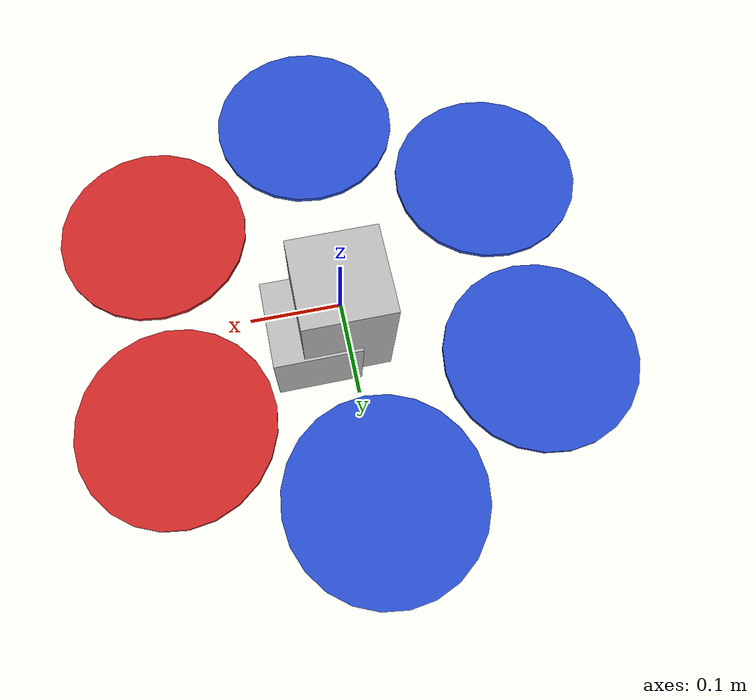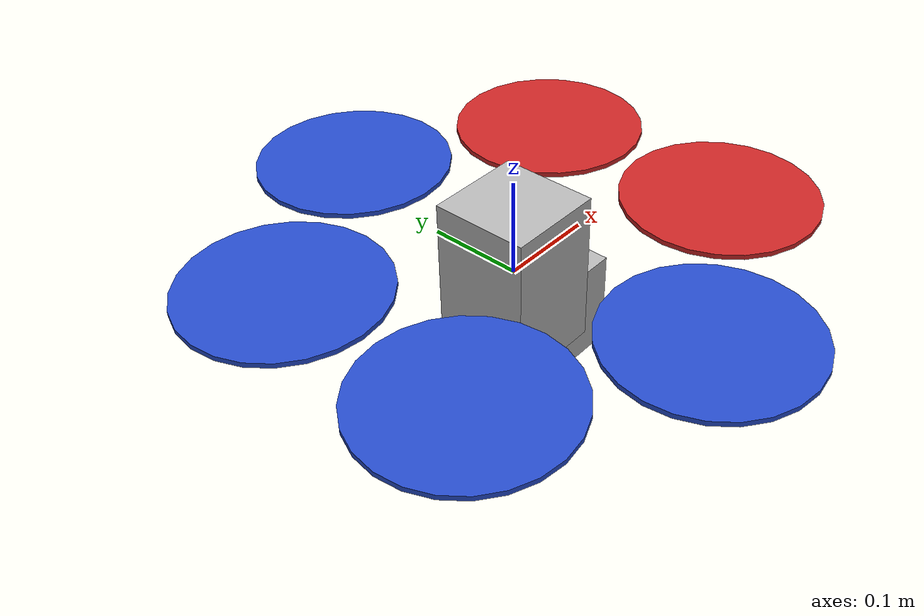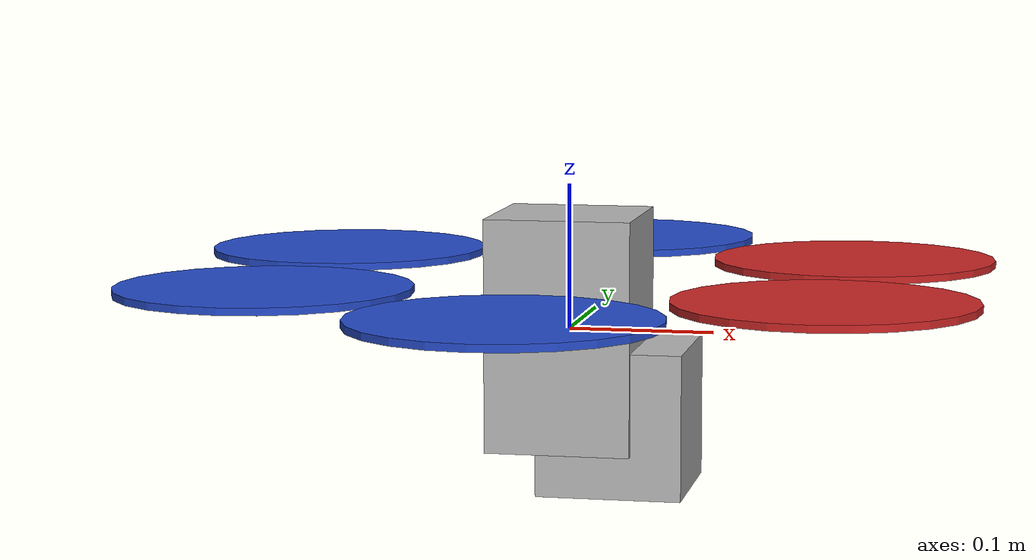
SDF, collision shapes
<?xml version='1.0'?>
<sdf version='1.7'>
  <model name='firefly_camera'>
    <link name='firefly/base_link'>
      <inertial>
        <pose>0 0 0 0 -0 0</pose>
        <mass>1.5</mass>
        <inertia>
          <ixx>0.0347563</ixx>
          <ixy>0</ixy>
          <ixz>0</ixz>
          <iyy>0.0458929</iyy>
          <iyz>0</iyz>
          <izz>0.0977</izz>
        </inertia>
      </inertial>
      <self_collide>0</self_collide>
      <enable_wind>0</enable_wind>
      <kinematic>0</kinematic>
      <pose>0 0 0 0 -0 0</pose>
      <visual name='firefly/base_link_inertia_visual'>
        <pose>0 0 0 0 -0 0</pose>
        <geometry>
          <mesh>
            <scale>1 1 1</scale>
            <uri>/root/drone_testing/src/rotors_simulator/rotors_description/meshes/firefly.dae</uri>
          </mesh>
        </geometry>
        <material>
          <shader type='pixel'/>
          <emissive>0 0 0 1</emissive>
        </material>
        <transparency>0</transparency>
        <cast_shadows>1</cast_shadows>
      </visual>
      <collision name='firefly/base_link_inertia_collision'>
        <laser_retro>0</laser_retro>
        <max_contacts>10</max_contacts>
        <pose>0 0 0 0 -0 0</pose>
        <geometry>
          <box>
            <size>0.1 0.1 0.16</size>
          </box>
        </geometry>
        <surface>
          <friction>
            <ode>
              <mu>1</mu>
              <mu2>1</mu2>
              <fdir1>0 0 0</fdir1>
              <slip1>0</slip1>
              <slip2>0</slip2>
            </ode>
            <torsional>
              <coefficient>1</coefficient>
              <patch_radius>0</patch_radius>
              <surface_radius>0</surface_radius>
              <use_patch_radius>1</use_patch_radius>
              <ode>
                <slip>0</slip>
              </ode>
            </torsional>
          </friction>
          <bounce>
            <restitution_coefficient>0</restitution_coefficient>
            <threshold>1e+06</threshold>
          </bounce>
          <contact>
            <collide_without_contact>0</collide_without_contact>
            <collide_without_contact_bitmask>1</collide_without_contact_bitmask>
            <collide_bitmask>1</collide_bitmask>
            <ode>
              <soft_cfm>0</soft_cfm>
              <soft_erp>0.2</soft_erp>
              <kp>1e+13</kp>
              <kd>1</kd>
              <max_vel>0.01</max_vel>
              <min_depth>0</min_depth>
            </ode>
            <bullet>
              <split_impulse>1</split_impulse>
              <split_impulse_penetration_threshold>-0.01</split_impulse_penetration_threshold>
              <soft_cfm>0</soft_cfm>
              <soft_erp>0.2</soft_erp>
              <kp>1e+13</kp>
              <kd>1</kd>
            </bullet>
          </contact>
        </surface>
      </collision>
    </link>
    <link name='firefly/imu_link'>
      <pose>0 0 0 0 -0 0</pose>
      <inertial>
        <pose>0 0 0 0 -0 0</pose>
        <mass>0.015</mass>
        <inertia>
          <ixx>1e-05</ixx>
          <ixy>0</ixy>
          <ixz>0</ixz>
          <iyy>1e-05</iyy>
          <iyz>0</iyz>
          <izz>1e-05</izz>
        </inertia>
      </inertial>
      <self_collide>0</self_collide>
      <enable_wind>0</enable_wind>
      <kinematic>0</kinematic>
    </link>
    <link name='firefly/imugt_link'>
      <pose>0 0 0 0 -0 0</pose>
      <inertial>
        <pose>0 0 0 0 -0 0</pose>
        <mass>1e-05</mass>
        <inertia>
          <ixx>1e-05</ixx>
          <ixy>0</ixy>
          <ixz>0</ixz>
          <iyy>1e-05</iyy>
          <iyz>0</iyz>
          <izz>1e-05</izz>
        </inertia>
      </inertial>
      <self_collide>0</self_collide>
      <enable_wind>0</enable_wind>
      <kinematic>0</kinematic>
    </link>
    <link name='firefly/odometry_sensor1_link'>
      <pose>0 0 0 0 -0 0</pose>
      <inertial>
        <pose>0 0 0 0 -0 0</pose>
        <mass>1e-05</mass>
        <inertia>
          <ixx>1e-05</ixx>
          <ixy>0</ixy>
          <ixz>0</ixz>
          <iyy>1e-05</iyy>
          <iyz>0</iyz>
          <izz>1e-05</izz>
        </inertia>
      </inertial>
      <self_collide>0</self_collide>
      <enable_wind>0</enable_wind>
      <kinematic>0</kinematic>
    </link>
    <link name='firefly/odometry_sensorgt_link'>
      <pose>0 0 0 0 -0 0</pose>
      <inertial>
        <pose>0 0 0 0 -0 0</pose>
        <mass>1e-05</mass>
        <inertia>
          <ixx>1e-05</ixx>
          <ixy>0</ixy>
          <ixz>0</ixz>
          <iyy>1e-05</iyy>
          <iyz>0</iyz>
          <izz>1e-05</izz>
        </inertia>
      </inertial>
      <self_collide>0</self_collide>
      <enable_wind>0</enable_wind>
      <kinematic>0</kinematic>
    </link>
    <link name='firefly/rotor_0'>
      <pose>0.186195 0.1075 0.037 0 -0 0</pose>
      <inertial>
        <pose>0 0 0 0 -0 0</pose>
        <mass>0.005</mass>
        <inertia>
          <ixx>9.75e-07</ixx>
          <ixy>0</ixy>
          <ixz>0</ixz>
          <iyy>4.17041e-05</iyy>
          <iyz>0</iyz>
          <izz>4.26041e-05</izz>
        </inertia>
      </inertial>
      <gravity>1</gravity>
      <velocity_decay/>
      <self_collide>0</self_collide>
      <enable_wind>0</enable_wind>
      <kinematic>0</kinematic>
      <visual name='firefly/rotor_0_visual'>
        <pose>0 0 0 0 -0 0</pose>
        <geometry>
          <mesh>
            <scale>0.1 0.1 0.1</scale>
            <uri>/root/drone_testing/src/rotors_simulator/rotors_description/meshes/propeller_ccw.dae</uri>
          </mesh>
        </geometry>
        <material>
          <script>
            <name>Gazebo/Red</name>
            <uri>file://media/materials/scripts/gazebo.material</uri>
          </script>
          <shader type='pixel'/>
          <emissive>0 0 0 1</emissive>
        </material>
        <transparency>0</transparency>
        <cast_shadows>1</cast_shadows>
      </visual>
      <collision name='firefly/rotor_0_collision'>
        <laser_retro>0</laser_retro>
        <max_contacts>10</max_contacts>
        <pose>0 0 0 0 -0 0</pose>
        <geometry>
          <cylinder>
            <radius>0.1</radius>
            <length>0.005</length>
          </cylinder>
        </geometry>
        <surface>
          <friction>
            <ode>
              <mu>1</mu>
              <mu2>1</mu2>
              <fdir1>0 0 0</fdir1>
              <slip1>0</slip1>
              <slip2>0</slip2>
            </ode>
            <torsional>
              <coefficient>1</coefficient>
              <patch_radius>0</patch_radius>
              <surface_radius>0</surface_radius>
              <use_patch_radius>1</use_patch_radius>
              <ode>
                <slip>0</slip>
              </ode>
            </torsional>
          </friction>
          <bounce>
            <restitution_coefficient>0</restitution_coefficient>
            <threshold>1e+06</threshold>
          </bounce>
          <contact>
            <collide_without_contact>0</collide_without_contact>
            <collide_without_contact_bitmask>1</collide_without_contact_bitmask>
            <collide_bitmask>1</collide_bitmask>
            <ode>
              <soft_cfm>0</soft_cfm>
              <soft_erp>0.2</soft_erp>
              <kp>1e+13</kp>
              <kd>1</kd>
              <max_vel>0.01</max_vel>
              <min_depth>0</min_depth>
            </ode>
            <bullet>
              <split_impulse>1</split_impulse>
              <split_impulse_penetration_threshold>-0.01</split_impulse_penetration_threshold>
              <soft_cfm>0</soft_cfm>
              <soft_erp>0.2</soft_erp>
              <kp>1e+13</kp>
              <kd>1</kd>
            </bullet>
          </contact>
        </surface>
      </collision>
    </link>
    <link name='firefly/rotor_1'>
      <pose>0 0.215 0.037 0 -0 0</pose>
      <inertial>
        <pose>0 0 0 0 -0 0</pose>
        <mass>0.005</mass>
        <inertia>
          <ixx>9.75e-07</ixx>
          <ixy>0</ixy>
          <ixz>0</ixz>
          <iyy>4.17041e-05</iyy>
          <iyz>0</iyz>
          <izz>4.26041e-05</izz>
        </inertia>
      </inertial>
      <gravity>1</gravity>
      <velocity_decay/>
      <self_collide>0</self_collide>
      <enable_wind>0</enable_wind>
      <kinematic>0</kinematic>
      <visual name='firefly/rotor_1_visual'>
        <pose>0 0 0 0 -0 0</pose>
        <geometry>
          <mesh>
            <scale>0.1 0.1 0.1</scale>
            <uri>/root/drone_testing/src/rotors_simulator/rotors_description/meshes/propeller_cw.dae</uri>
          </mesh>
        </geometry>
        <material>
          <script>
            <name>Gazebo/Blue</name>
            <uri>file://media/materials/scripts/gazebo.material</uri>
          </script>
          <shader type='pixel'/>
        </material>
        <transparency>0</transparency>
        <cast_shadows>1</cast_shadows>
      </visual>
      <collision name='firefly/rotor_1_collision'>
        <laser_retro>0</laser_retro>
        <max_contacts>10</max_contacts>
        <pose>0 0 0 0 -0 0</pose>
        <geometry>
          <cylinder>
            <radius>0.1</radius>
            <length>0.005</length>
          </cylinder>
        </geometry>
        <surface>
          <friction>
            <ode>
              <mu>1</mu>
              <mu2>1</mu2>
              <fdir1>0 0 0</fdir1>
              <slip1>0</slip1>
              <slip2>0</slip2>
            </ode>
            <torsional>
              <coefficient>1</coefficient>
              <patch_radius>0</patch_radius>
              <surface_radius>0</surface_radius>
              <use_patch_radius>1</use_patch_radius>
              <ode>
                <slip>0</slip>
              </ode>
            </torsional>
          </friction>
          <bounce>
            <restitution_coefficient>0</restitution_coefficient>
            <threshold>1e+06</threshold>
          </bounce>
          <contact>
            <collide_without_contact>0</collide_without_contact>
            <collide_without_contact_bitmask>1</collide_without_contact_bitmask>
            <collide_bitmask>1</collide_bitmask>
            <ode>
              <soft_cfm>0</soft_cfm>
              <soft_erp>0.2</soft_erp>
              <kp>1e+13</kp>
              <kd>1</kd>
              <max_vel>0.01</max_vel>
              <min_depth>0</min_depth>
            </ode>
            <bullet>
              <split_impulse>1</split_impulse>
              <split_impulse_penetration_threshold>-0.01</split_impulse_penetration_threshold>
              <soft_cfm>0</soft_cfm>
              <soft_erp>0.2</soft_erp>
              <kp>1e+13</kp>
              <kd>1</kd>
            </bullet>
          </contact>
        </surface>
      </collision>
    </link>
    <link name='firefly/rotor_2'>
      <pose>-0.186195 0.1075 0.037 0 -0 0</pose>
      <inertial>
        <pose>0 0 0 0 -0 0</pose>
        <mass>0.005</mass>
        <inertia>
          <ixx>9.75e-07</ixx>
          <ixy>0</ixy>
          <ixz>0</ixz>
          <iyy>4.17041e-05</iyy>
          <iyz>0</iyz>
          <izz>4.26041e-05</izz>
        </inertia>
      </inertial>
      <gravity>1</gravity>
      <velocity_decay/>
      <self_collide>0</self_collide>
      <enable_wind>0</enable_wind>
      <kinematic>0</kinematic>
      <visual name='firefly/rotor_2_visual'>
        <pose>0 0 0 0 -0 0</pose>
        <geometry>
          <mesh>
            <scale>0.1 0.1 0.1</scale>
            <uri>/root/drone_testing/src/rotors_simulator/rotors_description/meshes/propeller_ccw.dae</uri>
          </mesh>
        </geometry>
        <material>
          <script>
            <name>Gazebo/Blue</name>
            <uri>file://media/materials/scripts/gazebo.material</uri>
          </script>
          <shader type='pixel'/>
        </material>
        <transparency>0</transparency>
        <cast_shadows>1</cast_shadows>
      </visual>
      <collision name='firefly/rotor_2_collision'>
        <laser_retro>0</laser_retro>
        <max_contacts>10</max_contacts>
        <pose>0 0 0 0 -0 0</pose>
        <geometry>
          <cylinder>
            <radius>0.1</radius>
            <length>0.005</length>
          </cylinder>
        </geometry>
        <surface>
          <friction>
            <ode>
              <mu>1</mu>
              <mu2>1</mu2>
              <fdir1>0 0 0</fdir1>
              <slip1>0</slip1>
              <slip2>0</slip2>
            </ode>
            <torsional>
              <coefficient>1</coefficient>
              <patch_radius>0</patch_radius>
              <surface_radius>0</surface_radius>
              <use_patch_radius>1</use_patch_radius>
              <ode>
                <slip>0</slip>
              </ode>
            </torsional>
          </friction>
          <bounce>
            <restitution_coefficient>0</restitution_coefficient>
            <threshold>1e+06</threshold>
          </bounce>
          <contact>
            <collide_without_contact>0</collide_without_contact>
            <collide_without_contact_bitmask>1</collide_without_contact_bitmask>
            <collide_bitmask>1</collide_bitmask>
            <ode>
              <soft_cfm>0</soft_cfm>
              <soft_erp>0.2</soft_erp>
              <kp>1e+13</kp>
              <kd>1</kd>
              <max_vel>0.01</max_vel>
              <min_depth>0</min_depth>
            </ode>
            <bullet>
              <split_impulse>1</split_impulse>
              <split_impulse_penetration_threshold>-0.01</split_impulse_penetration_threshold>
              <soft_cfm>0</soft_cfm>
              <soft_erp>0.2</soft_erp>
              <kp>1e+13</kp>
              <kd>1</kd>
            </bullet>
          </contact>
        </surface>
      </collision>
    </link>
    <link name='firefly/rotor_3'>
      <pose>-0.186195 -0.1075 0.037 0 -0 0</pose>
      <inertial>
        <pose>0 0 0 0 -0 0</pose>
        <mass>0.005</mass>
        <inertia>
          <ixx>9.75e-07</ixx>
          <ixy>0</ixy>
          <ixz>0</ixz>
          <iyy>4.17041e-05</iyy>
          <iyz>0</iyz>
          <izz>4.26041e-05</izz>
        </inertia>
      </inertial>
      <gravity>1</gravity>
      <velocity_decay/>
      <self_collide>0</self_collide>
      <enable_wind>0</enable_wind>
      <kinematic>0</kinematic>
      <visual name='firefly/rotor_3_visual'>
        <pose>0 0 0 0 -0 0</pose>
        <geometry>
          <mesh>
            <scale>0.1 0.1 0.1</scale>
            <uri>/root/drone_testing/src/rotors_simulator/rotors_description/meshes/propeller_cw.dae</uri>
          </mesh>
        </geometry>
        <material>
          <script>
            <name>Gazebo/Blue</name>
            <uri>file://media/materials/scripts/gazebo.material</uri>
          </script>
          <shader type='pixel'/>
        </material>
        <transparency>0</transparency>
        <cast_shadows>1</cast_shadows>
      </visual>
      <collision name='firefly/rotor_3_collision'>
        <laser_retro>0</laser_retro>
        <max_contacts>10</max_contacts>
        <pose>0 0 0 0 -0 0</pose>
        <geometry>
          <cylinder>
            <radius>0.1</radius>
            <length>0.005</length>
          </cylinder>
        </geometry>
        <surface>
          <friction>
            <ode>
              <mu>1</mu>
              <mu2>1</mu2>
              <fdir1>0 0 0</fdir1>
              <slip1>0</slip1>
              <slip2>0</slip2>
            </ode>
            <torsional>
              <coefficient>1</coefficient>
              <patch_radius>0</patch_radius>
              <surface_radius>0</surface_radius>
              <use_patch_radius>1</use_patch_radius>
              <ode>
                <slip>0</slip>
              </ode>
            </torsional>
          </friction>
          <bounce>
            <restitution_coefficient>0</restitution_coefficient>
            <threshold>1e+06</threshold>
          </bounce>
          <contact>
            <collide_without_contact>0</collide_without_contact>
            <collide_without_contact_bitmask>1</collide_without_contact_bitmask>
            <collide_bitmask>1</collide_bitmask>
            <ode>
              <soft_cfm>0</soft_cfm>
              <soft_erp>0.2</soft_erp>
              <kp>1e+13</kp>
              <kd>1</kd>
              <max_vel>0.01</max_vel>
              <min_depth>0</min_depth>
            </ode>
            <bullet>
              <split_impulse>1</split_impulse>
              <split_impulse_penetration_threshold>-0.01</split_impulse_penetration_threshold>
              <soft_cfm>0</soft_cfm>
              <soft_erp>0.2</soft_erp>
              <kp>1e+13</kp>
              <kd>1</kd>
            </bullet>
          </contact>
        </surface>
      </collision>
    </link>
    <link name='firefly/rotor_4'>
      <pose>0 -0.215 0.037 0 -0 0</pose>
      <inertial>
        <pose>0 0 0 0 -0 0</pose>
        <mass>0.005</mass>
        <inertia>
          <ixx>9.75e-07</ixx>
          <ixy>0</ixy>
          <ixz>0</ixz>
          <iyy>4.17041e-05</iyy>
          <iyz>0</iyz>
          <izz>4.26041e-05</izz>
        </inertia>
      </inertial>
      <gravity>1</gravity>
      <velocity_decay/>
      <self_collide>0</self_collide>
      <enable_wind>0</enable_wind>
      <kinematic>0</kinematic>
      <visual name='firefly/rotor_4_visual'>
        <pose>0 0 0 0 -0 0</pose>
        <geometry>
          <mesh>
            <scale>0.1 0.1 0.1</scale>
            <uri>/root/drone_testing/src/rotors_simulator/rotors_description/meshes/propeller_ccw.dae</uri>
          </mesh>
        </geometry>
        <material>
          <script>
            <name>Gazebo/Blue</name>
            <uri>file://media/materials/scripts/gazebo.material</uri>
          </script>
          <shader type='pixel'/>
          <emissive>0 0 0 1</emissive>
        </material>
        <transparency>0</transparency>
        <cast_shadows>1</cast_shadows>
      </visual>
      <collision name='firefly/rotor_4_collision'>
        <laser_retro>0</laser_retro>
        <max_contacts>10</max_contacts>
        <pose>0 0 0 0 -0 0</pose>
        <geometry>
          <cylinder>
            <radius>0.1</radius>
            <length>0.005</length>
          </cylinder>
        </geometry>
        <surface>
          <friction>
            <ode>
              <mu>1</mu>
              <mu2>1</mu2>
              <fdir1>0 0 0</fdir1>
              <slip1>0</slip1>
              <slip2>0</slip2>
            </ode>
            <torsional>
              <coefficient>1</coefficient>
              <patch_radius>0</patch_radius>
              <surface_radius>0</surface_radius>
              <use_patch_radius>1</use_patch_radius>
              <ode>
                <slip>0</slip>
              </ode>
            </torsional>
          </friction>
          <bounce>
            <restitution_coefficient>0</restitution_coefficient>
            <threshold>1e+06</threshold>
          </bounce>
          <contact>
            <collide_without_contact>0</collide_without_contact>
            <collide_without_contact_bitmask>1</collide_without_contact_bitmask>
            <collide_bitmask>1</collide_bitmask>
            <ode>
              <soft_cfm>0</soft_cfm>
              <soft_erp>0.2</soft_erp>
              <kp>1e+13</kp>
              <kd>1</kd>
              <max_vel>0.01</max_vel>
              <min_depth>0</min_depth>
            </ode>
            <bullet>
              <split_impulse>1</split_impulse>
              <split_impulse_penetration_threshold>-0.01</split_impulse_penetration_threshold>
              <soft_cfm>0</soft_cfm>
              <soft_erp>0.2</soft_erp>
              <kp>1e+13</kp>
              <kd>1</kd>
            </bullet>
          </contact>
        </surface>
      </collision>
    </link>
    <link name='firefly/rotor_5'>
      <pose>0.186195 -0.1075 0.037 0 -0 0</pose>
      <inertial>
        <pose>0 0 0 0 -0 0</pose>
        <mass>0.005</mass>
        <inertia>
          <ixx>9.75e-07</ixx>
          <ixy>0</ixy>
          <ixz>0</ixz>
          <iyy>4.17041e-05</iyy>
          <iyz>0</iyz>
          <izz>4.26041e-05</izz>
        </inertia>
      </inertial>
      <gravity>1</gravity>
      <velocity_decay/>
      <self_collide>0</self_collide>
      <enable_wind>0</enable_wind>
      <kinematic>0</kinematic>
      <visual name='firefly/rotor_5_visual'>
        <pose>0 0 0 0 -0 0</pose>
        <geometry>
          <mesh>
            <scale>0.1 0.1 0.1</scale>
            <uri>/root/drone_testing/src/rotors_simulator/rotors_description/meshes/propeller_cw.dae</uri>
          </mesh>
        </geometry>
        <material>
          <script>
            <name>Gazebo/Red</name>
            <uri>file://media/materials/scripts/gazebo.material</uri>
          </script>
          <shader type='pixel'/>
          <emissive>0 0 0 1</emissive>
        </material>
        <transparency>0</transparency>
        <cast_shadows>1</cast_shadows>
      </visual>
      <collision name='firefly/rotor_5_collision'>
        <laser_retro>0</laser_retro>
        <max_contacts>10</max_contacts>
        <pose>0 0 0 0 -0 0</pose>
        <geometry>
          <cylinder>
            <radius>0.1</radius>
            <length>0.005</length>
          </cylinder>
        </geometry>
        <surface>
          <friction>
            <ode>
              <mu>1</mu>
              <mu2>1</mu2>
              <fdir1>0 0 0</fdir1>
              <slip1>0</slip1>
              <slip2>0</slip2>
            </ode>
            <torsional>
              <coefficient>1</coefficient>
              <patch_radius>0</patch_radius>
              <surface_radius>0</surface_radius>
              <use_patch_radius>1</use_patch_radius>
              <ode>
                <slip>0</slip>
              </ode>
            </torsional>
          </friction>
          <bounce>
            <restitution_coefficient>0</restitution_coefficient>
            <threshold>1e+06</threshold>
          </bounce>
          <contact>
            <collide_without_contact>0</collide_without_contact>
            <collide_without_contact_bitmask>1</collide_without_contact_bitmask>
            <collide_bitmask>1</collide_bitmask>
            <ode>
              <soft_cfm>0</soft_cfm>
              <soft_erp>0.2</soft_erp>
              <kp>1e+13</kp>
              <kd>1</kd>
              <max_vel>0.01</max_vel>
              <min_depth>0</min_depth>
            </ode>
            <bullet>
              <split_impulse>1</split_impulse>
              <split_impulse_penetration_threshold>-0.01</split_impulse_penetration_threshold>
              <soft_cfm>0</soft_cfm>
              <soft_erp>0.2</soft_erp>
              <kp>1e+13</kp>
              <kd>1</kd>
            </bullet>
          </contact>
        </surface>
      </collision>
    </link>
    <model name='camera'>
      <pose>0.034773 0.003161 -0.059461 0 -0 0</pose>
      <link name='link'>
        <inertial>
          <mass>0.1</mass>
          <inertia>
            <ixx>0.000166667</ixx>
            <iyy>0.000166667</iyy>
            <izz>0.000166667</izz>
            <ixy>0</ixy>
            <ixz>0</ixz>
            <iyz>0</iyz>
          </inertia>
        </inertial>
        <collision name='collision'>
          <geometry>
            <box>
              <size>0.1 0.1 0.1</size>
            </box>
          </geometry>
        </collision>
        <visual name='visual'>
          <geometry>
            <box>
              <size>0.1 0.1 0.1</size>
            </box>
          </geometry>
        </visual>
        <sensor name='camera' type='camera'>
          <camera>
            <horizontal_fov>1.047</horizontal_fov>
            <image>
              <width>320</width>
              <height>240</height>
            </image>
            <clip>
              <near>0.1</near>
              <far>100</far>
            </clip>
          </camera>
          <always_on>1</always_on>
          <update_rate>30</update_rate>
          <visualize>1</visualize>
        </sensor>
      </link>
    </model>
    <joint name='link_JOINT_0' type='fixed'>
      <parent>firefly/base_link</parent>
      <child>camera::link</child>
      <pose>0 0 0 0 -0 0</pose>
      <physics>
        <ode>
          <limit>
            <cfm>0</cfm>
            <erp>0.2</erp>
          </limit>
          <suspension>
            <cfm>0</cfm>
            <erp>0.2</erp>
          </suspension>
        </ode>
      </physics>
    </joint>
    <joint name='firefly/imu_joint' type='revolute'>
      <parent>firefly/base_link</parent>
      <child>firefly/imu_link</child>
      <pose>0 0 0 0 -0 0</pose>
      <axis>
        <xyz>1 0 0</xyz>
        <limit>
          <lower>0</lower>
          <upper>0</upper>
          <effort>0</effort>
          <velocity>0</velocity>
        </limit>
        <dynamics>
          <spring_reference>0</spring_reference>
          <spring_stiffness>0</spring_stiffness>
          <damping>0</damping>
          <friction>0</friction>
        </dynamics>
      </axis>
      <physics>
        <ode>
          <limit>
            <cfm>0</cfm>
            <erp>0.2</erp>
          </limit>
          <suspension>
            <cfm>0</cfm>
            <erp>0.2</erp>
          </suspension>
        </ode>
      </physics>
    </joint>
    <joint name='firefly/imugt_joint' type='revolute'>
      <parent>firefly/base_link</parent>
      <child>firefly/imugt_link</child>
      <pose>0 0 0 0 -0 0</pose>
      <axis>
        <xyz>1 0 0</xyz>
        <limit>
          <lower>0</lower>
          <upper>0</upper>
          <effort>0</effort>
          <velocity>0</velocity>
        </limit>
        <dynamics>
          <spring_reference>0</spring_reference>
          <spring_stiffness>0</spring_stiffness>
          <damping>0</damping>
          <friction>0</friction>
        </dynamics>
      </axis>
      <physics>
        <ode>
          <limit>
            <cfm>0</cfm>
            <erp>0.2</erp>
          </limit>
          <suspension>
            <cfm>0</cfm>
            <erp>0.2</erp>
          </suspension>
        </ode>
      </physics>
    </joint>
    <joint name='firefly/odometry_sensor1_joint' type='revolute'>
      <parent>firefly/base_link</parent>
      <child>firefly/odometry_sensor1_link</child>
      <pose>0 0 0 0 -0 0</pose>
      <axis>
        <xyz>1 0 0</xyz>
        <limit>
          <lower>0</lower>
          <upper>0</upper>
          <effort>0</effort>
          <velocity>0</velocity>
        </limit>
        <dynamics>
          <spring_reference>0</spring_reference>
          <spring_stiffness>0</spring_stiffness>
          <damping>0</damping>
          <friction>0</friction>
        </dynamics>
      </axis>
      <physics>
        <ode>
          <limit>
            <cfm>0</cfm>
            <erp>0.2</erp>
          </limit>
          <suspension>
            <cfm>0</cfm>
            <erp>0.2</erp>
          </suspension>
        </ode>
      </physics>
    </joint>
    <joint name='firefly/odometry_sensorgt_joint' type='revolute'>
      <parent>firefly/base_link</parent>
      <child>firefly/odometry_sensorgt_link</child>
      <pose>0 0 0 0 -0 0</pose>
      <axis>
        <xyz>1 0 0</xyz>
        <limit>
          <lower>0</lower>
          <upper>0</upper>
          <effort>0</effort>
          <velocity>0</velocity>
        </limit>
        <dynamics>
          <spring_reference>0</spring_reference>
          <spring_stiffness>0</spring_stiffness>
          <damping>0</damping>
          <friction>0</friction>
        </dynamics>
      </axis>
      <physics>
        <ode>
          <limit>
            <cfm>0</cfm>
            <erp>0.2</erp>
          </limit>
          <suspension>
            <cfm>0</cfm>
            <erp>0.2</erp>
          </suspension>
        </ode>
      </physics>
    </joint>
    <joint name='firefly/rotor_0_joint' type='revolute'>
      <parent>firefly/base_link</parent>
      <child>firefly/rotor_0</child>
      <pose>0 0 0 0 -0 0</pose>
      <axis>
        <xyz>0 0 1</xyz>
        <limit>
          <lower>-1e+16</lower>
          <upper>1e+16</upper>
          <effort>-1</effort>
          <velocity>-1</velocity>
        </limit>
        <dynamics>
          <spring_reference>0</spring_reference>
          <spring_stiffness>0</spring_stiffness>
          <damping>0</damping>
          <friction>0</friction>
        </dynamics>
      </axis>
      <physics>
        <ode>
          <limit>
            <cfm>0</cfm>
            <erp>0.2</erp>
          </limit>
          <suspension>
            <cfm>0</cfm>
            <erp>0.2</erp>
          </suspension>
        </ode>
      </physics>
    </joint>
    <joint name='firefly/rotor_1_joint' type='revolute'>
      <parent>firefly/base_link</parent>
      <child>firefly/rotor_1</child>
      <pose>0 0 0 0 -0 0</pose>
      <axis>
        <xyz>0 0 1</xyz>
        <limit>
          <lower>-1e+16</lower>
          <upper>1e+16</upper>
          <effort>-1</effort>
          <velocity>-1</velocity>
        </limit>
        <dynamics>
          <spring_reference>0</spring_reference>
          <spring_stiffness>0</spring_stiffness>
          <damping>0</damping>
          <friction>0</friction>
        </dynamics>
      </axis>
      <physics>
        <ode>
          <limit>
            <cfm>0</cfm>
            <erp>0.2</erp>
          </limit>
          <suspension>
            <cfm>0</cfm>
            <erp>0.2</erp>
          </suspension>
        </ode>
      </physics>
    </joint>
    <joint name='firefly/rotor_2_joint' type='revolute'>
      <parent>firefly/base_link</parent>
      <child>firefly/rotor_2</child>
      <pose>0 0 0 0 -0 0</pose>
      <axis>
        <xyz>0 0 1</xyz>
        <limit>
          <lower>-1e+16</lower>
          <upper>1e+16</upper>
          <effort>-1</effort>
          <velocity>-1</velocity>
        </limit>
        <dynamics>
          <spring_reference>0</spring_reference>
          <spring_stiffness>0</spring_stiffness>
          <damping>0</damping>
          <friction>0</friction>
        </dynamics>
      </axis>
      <physics>
        <ode>
          <limit>
            <cfm>0</cfm>
            <erp>0.2</erp>
          </limit>
          <suspension>
            <cfm>0</cfm>
            <erp>0.2</erp>
          </suspension>
        </ode>
      </physics>
    </joint>
    <joint name='firefly/rotor_3_joint' type='revolute'>
      <parent>firefly/base_link</parent>
      <child>firefly/rotor_3</child>
      <pose>0 0 0 0 -0 0</pose>
      <axis>
        <xyz>0 0 1</xyz>
        <limit>
          <lower>-1e+16</lower>
          <upper>1e+16</upper>
          <effort>-1</effort>
          <velocity>-1</velocity>
        </limit>
        <dynamics>
          <spring_reference>0</spring_reference>
          <spring_stiffness>0</spring_stiffness>
          <damping>0</damping>
          <friction>0</friction>
        </dynamics>
      </axis>
      <physics>
        <ode>
          <limit>
            <cfm>0</cfm>
            <erp>0.2</erp>
          </limit>
          <suspension>
            <cfm>0</cfm>
            <erp>0.2</erp>
          </suspension>
        </ode>
      </physics>
    </joint>
    <joint name='firefly/rotor_4_joint' type='revolute'>
      <parent>firefly/base_link</parent>
      <child>firefly/rotor_4</child>
      <pose>0 0 0 0 -0 0</pose>
      <axis>
        <xyz>0 0 1</xyz>
        <limit>
          <lower>-1e+16</lower>
          <upper>1e+16</upper>
          <effort>-1</effort>
          <velocity>-1</velocity>
        </limit>
        <dynamics>
          <spring_reference>0</spring_reference>
          <spring_stiffness>0</spring_stiffness>
          <damping>0</damping>
          <friction>0</friction>
        </dynamics>
      </axis>
      <physics>
        <ode>
          <limit>
            <cfm>0</cfm>
            <erp>0.2</erp>
          </limit>
          <suspension>
            <cfm>0</cfm>
            <erp>0.2</erp>
          </suspension>
        </ode>
      </physics>
    </joint>
    <joint name='firefly/rotor_5_joint' type='revolute'>
      <parent>firefly/base_link</parent>
      <child>firefly/rotor_5</child>
      <pose>0 0 0 0 -0 0</pose>
      <axis>
        <xyz>0 0 1</xyz>
        <limit>
          <lower>-1e+16</lower>
          <upper>1e+16</upper>
          <effort>-1</effort>
          <velocity>-1</velocity>
        </limit>
        <dynamics>
          <spring_reference>0</spring_reference>
          <spring_stiffness>0</spring_stiffness>
          <damping>0</damping>
          <friction>0</friction>
        </dynamics>
      </axis>
      <physics>
        <ode>
          <limit>
            <cfm>0</cfm>
            <erp>0.2</erp>
          </limit>
          <suspension>
            <cfm>0</cfm>
            <erp>0.2</erp>
          </suspension>
        </ode>
      </physics>
    </joint>
    <static>0</static>
    <allow_auto_disable>1</allow_auto_disable>
    <plugin name='controller_interface' filename='librotors_gazebo_controller_interface.so'>
      <robotNamespace>firefly</robotNamespace>
      <commandAttitudeThrustSubTopic>command/attitude</commandAttitudeThrustSubTopic>
      <commandRateThrustSubTopic>command/rate</commandRateThrustSubTopic>
      <commandMotorSpeedSubTopic>command/motor_speed</commandMotorSpeedSubTopic>
      <imuSubTopic>imu</imuSubTopic>
      <motorSpeedCommandPubTopic>gazebo/command/motor_speed</motorSpeedCommandPubTopic>
    </plugin>
    <plugin name='firefly_back_left_motor_model' filename='librotors_gazebo_motor_model.so'>
      <robotNamespace>firefly</robotNamespace>
      <jointName>firefly/rotor_2_joint</jointName>
      <linkName>firefly/rotor_2</linkName>
      <turningDirection>ccw</turningDirection>
      <timeConstantUp>0.0125</timeConstantUp>
      <timeConstantDown>0.025</timeConstantDown>
      <maxRotVelocity>838</maxRotVelocity>
      <motorConstant>8.54858e-06</motorConstant>
      <momentConstant>0.016</momentConstant>
      <commandSubTopic>gazebo/command/motor_speed</commandSubTopic>
      <motorNumber>2</motorNumber>
      <rotorDragCoefficient>8.06428e-05</rotorDragCoefficient>
      <rollingMomentCoefficient>1e-06</rollingMomentCoefficient>
      <motorSpeedPubTopic>motor_speed/2</motorSpeedPubTopic>
      <rotorVelocitySlowdownSim>10</rotorVelocitySlowdownSim>
    </plugin>
    <plugin name='firefly_back_right_motor_model' filename='librotors_gazebo_motor_model.so'>
      <robotNamespace>firefly</robotNamespace>
      <jointName>firefly/rotor_3_joint</jointName>
      <linkName>firefly/rotor_3</linkName>
      <turningDirection>cw</turningDirection>
      <timeConstantUp>0.0125</timeConstantUp>
      <timeConstantDown>0.025</timeConstantDown>
      <maxRotVelocity>838</maxRotVelocity>
      <motorConstant>8.54858e-06</motorConstant>
      <momentConstant>0.016</momentConstant>
      <commandSubTopic>gazebo/command/motor_speed</commandSubTopic>
      <motorNumber>3</motorNumber>
      <rotorDragCoefficient>8.06428e-05</rotorDragCoefficient>
      <rollingMomentCoefficient>1e-06</rollingMomentCoefficient>
      <motorSpeedPubTopic>motor_speed/3</motorSpeedPubTopic>
      <rotorVelocitySlowdownSim>10</rotorVelocitySlowdownSim>
    </plugin>
    <plugin name='firefly_front_left_motor_model' filename='librotors_gazebo_motor_model.so'>
      <robotNamespace>firefly</robotNamespace>
      <jointName>firefly/rotor_0_joint</jointName>
      <linkName>firefly/rotor_0</linkName>
      <turningDirection>ccw</turningDirection>
      <timeConstantUp>0.0125</timeConstantUp>
      <timeConstantDown>0.025</timeConstantDown>
      <maxRotVelocity>838</maxRotVelocity>
      <motorConstant>8.54858e-06</motorConstant>
      <momentConstant>0.016</momentConstant>
      <commandSubTopic>gazebo/command/motor_speed</commandSubTopic>
      <motorNumber>0</motorNumber>
      <rotorDragCoefficient>8.06428e-05</rotorDragCoefficient>
      <rollingMomentCoefficient>1e-06</rollingMomentCoefficient>
      <motorSpeedPubTopic>motor_speed/0</motorSpeedPubTopic>
      <rotorVelocitySlowdownSim>10</rotorVelocitySlowdownSim>
    </plugin>
    <plugin name='firefly_front_right_motor_model' filename='librotors_gazebo_motor_model.so'>
      <robotNamespace>firefly</robotNamespace>
      <jointName>firefly/rotor_5_joint</jointName>
      <linkName>firefly/rotor_5</linkName>
      <turningDirection>cw</turningDirection>
      <timeConstantUp>0.0125</timeConstantUp>
      <timeConstantDown>0.025</timeConstantDown>
      <maxRotVelocity>838</maxRotVelocity>
      <motorConstant>8.54858e-06</motorConstant>
      <momentConstant>0.016</momentConstant>
      <commandSubTopic>gazebo/command/motor_speed</commandSubTopic>
      <motorNumber>5</motorNumber>
      <rotorDragCoefficient>8.06428e-05</rotorDragCoefficient>
      <rollingMomentCoefficient>1e-06</rollingMomentCoefficient>
      <motorSpeedPubTopic>motor_speed/5</motorSpeedPubTopic>
      <rotorVelocitySlowdownSim>10</rotorVelocitySlowdownSim>
    </plugin>
    <plugin name='firefly_left_motor_model' filename='librotors_gazebo_motor_model.so'>
      <robotNamespace>firefly</robotNamespace>
      <jointName>firefly/rotor_1_joint</jointName>
      <linkName>firefly/rotor_1</linkName>
      <turningDirection>cw</turningDirection>
      <timeConstantUp>0.0125</timeConstantUp>
      <timeConstantDown>0.025</timeConstantDown>
      <maxRotVelocity>838</maxRotVelocity>
      <motorConstant>8.54858e-06</motorConstant>
      <momentConstant>0.016</momentConstant>
      <commandSubTopic>gazebo/command/motor_speed</commandSubTopic>
      <motorNumber>1</motorNumber>
      <rotorDragCoefficient>8.06428e-05</rotorDragCoefficient>
      <rollingMomentCoefficient>1e-06</rollingMomentCoefficient>
      <motorSpeedPubTopic>motor_speed/1</motorSpeedPubTopic>
      <rotorVelocitySlowdownSim>10</rotorVelocitySlowdownSim>
    </plugin>
    <plugin name='firefly_right_motor_model' filename='librotors_gazebo_motor_model.so'>
      <robotNamespace>firefly</robotNamespace>
      <jointName>firefly/rotor_4_joint</jointName>
      <linkName>firefly/rotor_4</linkName>
      <turningDirection>ccw</turningDirection>
      <timeConstantUp>0.0125</timeConstantUp>
      <timeConstantDown>0.025</timeConstantDown>
      <maxRotVelocity>838</maxRotVelocity>
      <motorConstant>8.54858e-06</motorConstant>
      <momentConstant>0.016</momentConstant>
      <commandSubTopic>gazebo/command/motor_speed</commandSubTopic>
      <motorNumber>4</motorNumber>
      <rotorDragCoefficient>8.06428e-05</rotorDragCoefficient>
      <rollingMomentCoefficient>1e-06</rollingMomentCoefficient>
      <motorSpeedPubTopic>motor_speed/4</motorSpeedPubTopic>
      <rotorVelocitySlowdownSim>10</rotorVelocitySlowdownSim>
    </plugin>
    <plugin name='multirotor_base_plugin' filename='librotors_gazebo_multirotor_base_plugin.so'>
      <robotNamespace>firefly</robotNamespace>
      <linkName>firefly/base_link</linkName>
      <rotorVelocitySlowdownSim>10</rotorVelocitySlowdownSim>
    </plugin>
    <plugin name='odometry_sensor1' filename='librotors_gazebo_odometry_plugin.so'>
      <linkName>firefly/odometry_sensor1_link</linkName>
      <robotNamespace>firefly</robotNamespace>
      <poseTopic>odometry_sensor1/pose</poseTopic>
      <poseWithCovarianceTopic>odometry_sensor1/pose_with_covariance</poseWithCovarianceTopic>
      <positionTopic>odometry_sensor1/position</positionTopic>
      <transformTopic>odometry_sensor1/transform</transformTopic>
      <odometryTopic>odometry_sensor1/odometry</odometryTopic>
      <parentFrameId>world</parentFrameId>
      <childFrameId>firefly/odometry_sensor1</childFrameId>
      <measurementDivisor>1</measurementDivisor>
      <measurementDelay>0</measurementDelay>
      <unknownDelay>0.0</unknownDelay>
      <noiseNormalPosition>0 0 0</noiseNormalPosition>
      <noiseNormalQuaternion>0 0 0</noiseNormalQuaternion>
      <noiseNormalLinearVelocity>0 0 0</noiseNormalLinearVelocity>
      <noiseNormalAngularVelocity>0 0 0</noiseNormalAngularVelocity>
      <noiseUniformPosition>0 0 0</noiseUniformPosition>
      <noiseUniformQuaternion>0 0 0</noiseUniformQuaternion>
      <noiseUniformLinearVelocity>0 0 0</noiseUniformLinearVelocity>
      <noiseUniformAngularVelocity>0 0 0</noiseUniformAngularVelocity>
    </plugin>
    <plugin name='odometry_sensorgt' filename='librotors_gazebo_odometry_plugin.so'>
      <linkName>firefly/odometry_sensorgt_link</linkName>
      <robotNamespace>firefly</robotNamespace>
      <poseTopic>ground_truth/pose</poseTopic>
      <poseWithCovarianceTopic>ground_truth/pose_with_covariance</poseWithCovarianceTopic>
      <positionTopic>ground_truth/position</positionTopic>
      <transformTopic>ground_truth/transform</transformTopic>
      <odometryTopic>ground_truth/odometry</odometryTopic>
      <parentFrameId>world</parentFrameId>
      <childFrameId>firefly/base_link</childFrameId>
      <measurementDivisor>1</measurementDivisor>
      <measurementDelay>0</measurementDelay>
      <unknownDelay>0.0</unknownDelay>
      <noiseNormalPosition>0 0 0</noiseNormalPosition>
      <noiseNormalQuaternion>0 0 0</noiseNormalQuaternion>
      <noiseNormalLinearVelocity>0 0 0</noiseNormalLinearVelocity>
      <noiseNormalAngularVelocity>0 0 0</noiseNormalAngularVelocity>
      <noiseUniformPosition>0 0 0</noiseUniformPosition>
      <noiseUniformQuaternion>0 0 0</noiseUniformQuaternion>
      <noiseUniformLinearVelocity>0 0 0</noiseUniformLinearVelocity>
      <noiseUniformAngularVelocity>0 0 0</noiseUniformAngularVelocity>
    </plugin>
    <plugin name='rotors_gazebo_imu_plugin' filename='librotors_gazebo_imu_plugin.so'>
      <robotNamespace>firefly</robotNamespace>
      <linkName>firefly/imu_link</linkName>
      <imuTopic>imu</imuTopic>
      <gyroscopeNoiseDensity>0.0003394</gyroscopeNoiseDensity>
      <gyroscopeRandomWalk>3.8785e-05</gyroscopeRandomWalk>
      <gyroscopeBiasCorrelationTime>1000.0</gyroscopeBiasCorrelationTime>
      <gyroscopeTurnOnBiasSigma>0.0087</gyroscopeTurnOnBiasSigma>
      <accelerometerNoiseDensity>0.004</accelerometerNoiseDensity>
      <accelerometerRandomWalk>0.006</accelerometerRandomWalk>
      <accelerometerBiasCorrelationTime>300.0</accelerometerBiasCorrelationTime>
      <accelerometerTurnOnBiasSigma>0.196</accelerometerTurnOnBiasSigma>
    </plugin>
    <plugin name='rotors_gazebo_imugt_plugin' filename='librotors_gazebo_imu_plugin.so'>
      <robotNamespace>firefly</robotNamespace>
      <linkName>firefly/imugt_link</linkName>
      <imuTopic>ground_truth/imu</imuTopic>
      <gyroscopeNoiseDensity>0.0</gyroscopeNoiseDensity>
      <gyroscopeRandomWalk>0.0</gyroscopeRandomWalk>
      <gyroscopeBiasCorrelationTime>1000.0</gyroscopeBiasCorrelationTime>
      <gyroscopeTurnOnBiasSigma>0.0</gyroscopeTurnOnBiasSigma>
      <accelerometerNoiseDensity>0.0</accelerometerNoiseDensity>
      <accelerometerRandomWalk>0.0</accelerometerRandomWalk>
      <accelerometerBiasCorrelationTime>300.0</accelerometerBiasCorrelationTime>
      <accelerometerTurnOnBiasSigma>0.0</accelerometerTurnOnBiasSigma>
    </plugin>
  </model>
</sdf>
